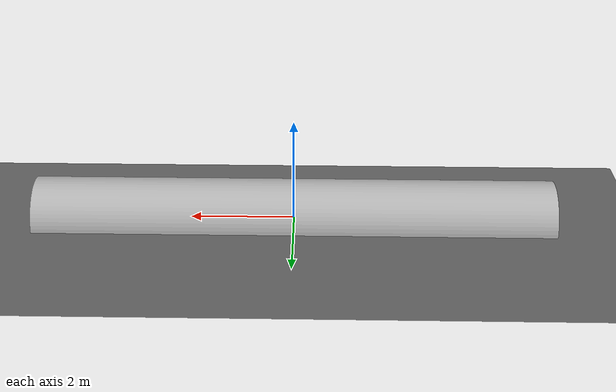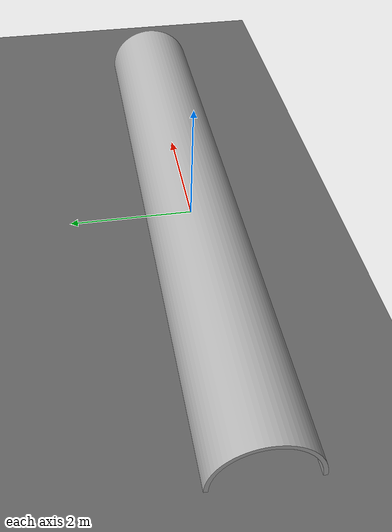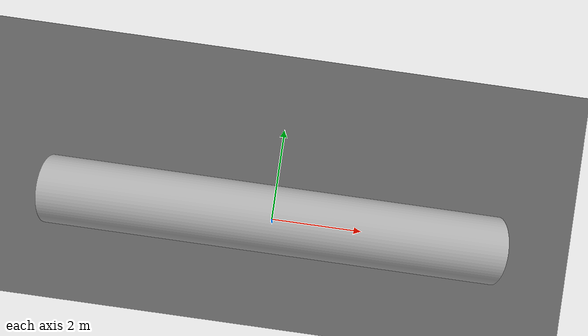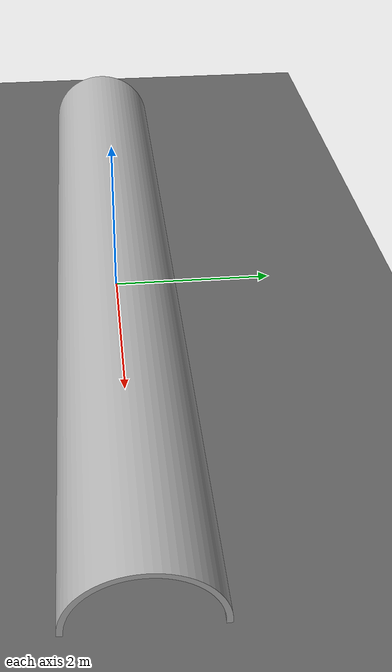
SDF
<?xml version="1.0" ?>
<sdf version="1.8">
  <world name="tunnel_world">
    <physics name="1ms" type="ignored">
      <max_step_size>0.001</max_step_size>
      <real_time_factor>1.0</real_time_factor>
    </physics>

    <plugin filename="libignition-gazebo-physics-system.so" name="ignition::gazebo::systems::Physics"></plugin>

    <plugin filename="libignition-gazebo-scene-broadcaster-system.so" name="ignition::gazebo::systems::SceneBroadcaster"></plugin>

    <plugin filename="libignition-gazebo-user-commands-system.so" name="ignition::gazebo::systems::UserCommands"></plugin>

    <plugin filename="libignition-gazebo-sensors-system.so" name="ignition::gazebo::systems::Sensors">
      <render_engine>ogre2</render_engine>
    </plugin>

    <light type="directional" name="sun">
      <cast_shadows>true</cast_shadows>
      <pose>0 0 10 0 0 0</pose>
      <diffuse>0.9 0.9 0.9 1</diffuse>
      <specular>0.2 0.2 0.2 1</specular>
      <direction>-0.5 0.1 -0.9</direction>
    </light>

    <light type="point" name="tunnel_light_1">
      <pose>0 0 0.3 0 0 0</pose> <diffuse>1 1 1 1</diffuse>
      <specular>0.5 0.5 0.5 1</specular>
      <attenuation>
        <range>10</range> <linear>0.05</linear>
        <constant>0.8</constant>
      </attenuation>
    </light>

     <light type="point" name="tunnel_light_2">
      <pose>0 0 -0.3 0 0 0</pose> <diffuse>1 1 1 1</diffuse>
      <specular>0.5 0.5 0.5 1</specular>
      <attenuation>
        <range>10</range> <linear>0.05</linear>
        <constant>0.8</constant>
      </attenuation>
    </light>

    <model name="ground_plane">
      <static>true</static>
      <link name="link">
        <collision name="collision">
          <geometry>
            <plane>
              <normal>0 0 1</normal>
              <size>100 100</size> </plane>
          </geometry>
        </collision>
        <visual name="visual">
          <geometry>
            <plane>
              <normal>0 0 1</normal>
              <size>100 100</size>
            </plane>
          </geometry>
          <material>
            <ambient>0.4 0.4 0.4 1</ambient>
            <diffuse>0.4 0.4 0.4 1</diffuse>
          </material>
        </visual>
      </link>
    </model>

    <include>
      <uri>model://tunnel</uri>
      <pose>0 0 0 0 0 0</pose>
    </include>

  </world>
</sdf>

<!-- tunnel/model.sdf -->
<sdf version="1.8">
  <model name="tunnel">
    <static>true</static>

    <link name="link">

      <visual name="visual">
        <pose>0 0 0 1.5708 0 0</pose>
        <geometry>
          <mesh>
            <uri>model://tunnel/tunnel_thick.obj</uri>
            <scale>1 2 2</scale>
          </mesh>
        </geometry>
      </visual>

      <collision name="collision">
        <pose>0 0 0 1.5708 0 0</pose>
        <geometry>
          <mesh>
            <uri>model://tunnel/tunnel_thick.obj</uri>
            <scale>1 2 2</scale>
          </mesh>
        </geometry>
      </collision>

    </link>
  </model>
</sdf>
